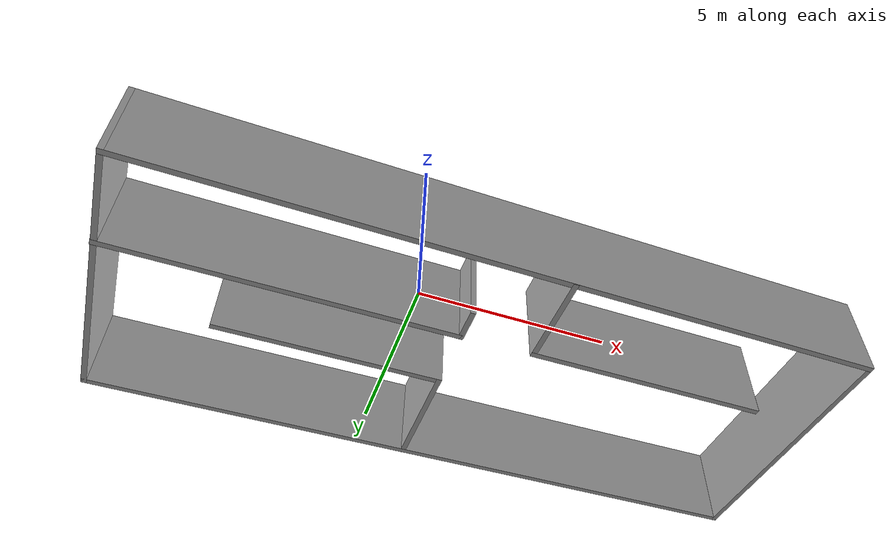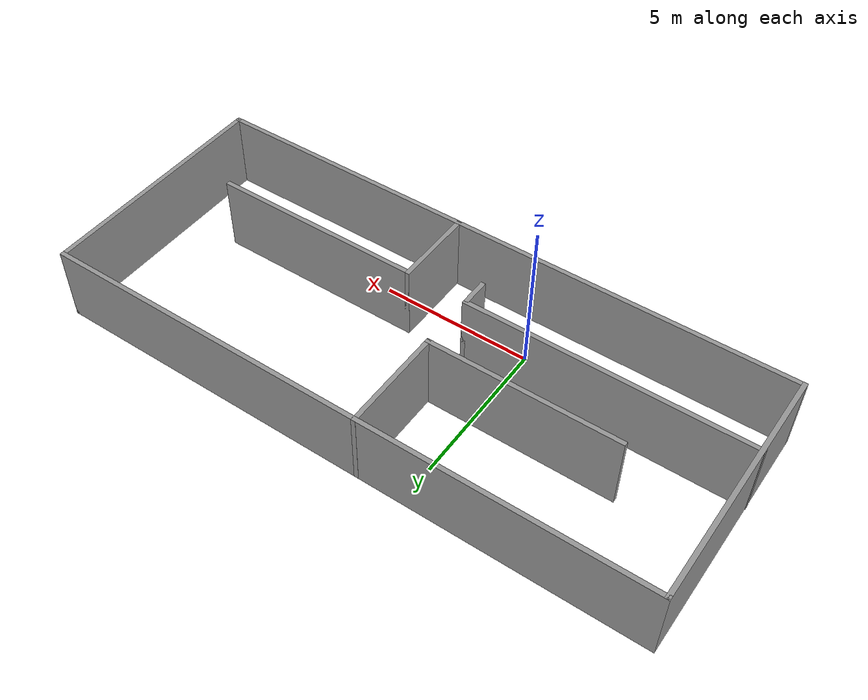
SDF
<?xml version='1.0'?>
<sdf version='1.7'>
  <model name='bigger_room'>
    <pose>2.32757 2.36595 0 0 -0 0</pose>
    <link name='Wall_0'>
      <collision name='Wall_0_Collision'>
        <geometry>
          <box>
            <size>8 0.15 2.5</size>
          </box>
        </geometry>
        <pose>0 0 1.25 0 -0 0</pose>
      </collision>
      <visual name='Wall_0_Visual'>
        <pose>0 0 1.25 0 -0 0</pose>
        <geometry>
          <box>
            <size>8 0.15 2.5</size>
          </box>
        </geometry>
        <material>
          <script>
            <uri>file://media/materials/scripts/gazebo.material</uri>
            <name>Gazebo/Grey</name>
          </script>
          <ambient>1 1 1 1</ambient>
        </material>
        <meta>
          <layer>0</layer>
        </meta>
      </visual>
      <pose>-9.91757 -0.000951 0 0 -0 1.5708</pose>
    </link>
    <link name='Wall_1'>
      <collision name='Wall_1_Collision'>
        <geometry>
          <box>
            <size>20 0.15 2.5</size>
          </box>
        </geometry>
        <pose>0 0 1.25 0 -0 0</pose>
      </collision>
      <visual name='Wall_1_Visual'>
        <pose>0 0 1.25 0 -0 0</pose>
        <geometry>
          <box>
            <size>20 0.15 2.5</size>
          </box>
        </geometry>
        <material>
          <script>
            <uri>file://media/materials/scripts/gazebo.material</uri>
            <name>Gazebo/Grey</name>
          </script>
          <ambient>1 1 1 1</ambient>
        </material>
        <meta>
          <layer>0</layer>
        </meta>
      </visual>
      <pose>0.007425 3.92405 0 0 -0 0</pose>
    </link>
    <link name='Wall_11'>
      <collision name='Wall_11_Collision'>
        <geometry>
          <box>
            <size>2.75 0.15 2.5</size>
          </box>
        </geometry>
        <pose>0 0 1.25 0 -0 0</pose>
      </collision>
      <visual name='Wall_11_Visual'>
        <pose>0 0 1.25 0 -0 0</pose>
        <geometry>
          <box>
            <size>2.75 0.15 2.5</size>
          </box>
        </geometry>
        <material>
          <script>
            <uri>file://media/materials/scripts/gazebo.material</uri>
            <name>Gazebo/Grey</name>
          </script>
          <ambient>1 1 1 1</ambient>
        </material>
        <meta>
          <layer>0</layer>
        </meta>
      </visual>
      <pose>1.19125 -2.6096 0 0 -0 1.5708</pose>
    </link>
    <link name='Wall_12'>
      <collision name='Wall_12_Collision'>
        <geometry>
          <box>
            <size>7 0.15 2.5</size>
          </box>
        </geometry>
        <pose>0 0 1.25 0 -0 0</pose>
      </collision>
      <visual name='Wall_12_Visual'>
        <pose>0 0 1.25 0 -0 0</pose>
        <geometry>
          <box>
            <size>7 0.15 2.5</size>
          </box>
        </geometry>
        <material>
          <script>
            <uri>file://media/materials/scripts/gazebo.material</uri>
            <name>Gazebo/Grey</name>
          </script>
          <ambient>1 1 1 1</ambient>
        </material>
        <meta>
          <layer>0</layer>
        </meta>
      </visual>
      <pose>4.61625 -1.3096 0 0 -0 0</pose>
    </link>
    <link name='Wall_2'>
      <collision name='Wall_2_Collision'>
        <geometry>
          <box>
            <size>8 0.15 2.5</size>
          </box>
        </geometry>
        <pose>0 0 1.25 0 -0 0</pose>
      </collision>
      <visual name='Wall_2_Visual'>
        <pose>0 0 1.25 0 -0 0</pose>
        <geometry>
          <box>
            <size>8 0.15 2.5</size>
          </box>
        </geometry>
        <material>
          <script>
            <uri>file://media/materials/scripts/gazebo.material</uri>
            <name>Gazebo/Grey</name>
          </script>
          <ambient>1 1 1 1</ambient>
        </material>
        <meta>
          <layer>0</layer>
        </meta>
      </visual>
      <pose>9.93243 -0.000951 0 0 -0 -1.5708</pose>
    </link>
    <link name='Wall_3'>
      <collision name='Wall_3_Collision'>
        <geometry>
          <box>
            <size>20 0.15 2.5</size>
          </box>
        </geometry>
        <pose>0 0 1.25 0 -0 0</pose>
      </collision>
      <visual name='Wall_3_Visual'>
        <pose>0 0 1.25 0 -0 0</pose>
        <geometry>
          <box>
            <size>20 0.15 2.5</size>
          </box>
        </geometry>
        <material>
          <script>
            <uri>file://media/materials/scripts/gazebo.material</uri>
            <name>Gazebo/Grey</name>
          </script>
          <ambient>1 1 1 1</ambient>
        </material>
        <meta>
          <layer>0</layer>
        </meta>
      </visual>
      <pose>0.007425 -3.92595 0 0 -0 3.14159</pose>
    </link>
    <link name='Wall_5'>
      <collision name='Wall_5_Collision'>
        <geometry>
          <box>
            <size>3.5 0.15 2.5</size>
          </box>
        </geometry>
        <pose>0 0 1.25 0 -0 0</pose>
      </collision>
      <visual name='Wall_5_Visual'>
        <pose>0 0 1.25 0 -0 0</pose>
        <geometry>
          <box>
            <size>3.5 0.15 2.5</size>
          </box>
        </geometry>
        <material>
          <script>
            <uri>file://media/materials/scripts/gazebo.material</uri>
            <name>Gazebo/Grey</name>
          </script>
          <ambient>1 1 1 1</ambient>
        </material>
        <meta>
          <layer>0</layer>
        </meta>
      </visual>
      <pose>-0.820103 2.25095 0 0 -0 -1.5708</pose>
    </link>
    <link name='Wall_6'>
      <collision name='Wall_6_Collision'>
        <geometry>
          <box>
            <size>6.25 0.15 2.5</size>
          </box>
        </geometry>
        <pose>0 0 1.25 0 -0 0</pose>
      </collision>
      <visual name='Wall_6_Visual'>
        <pose>0 0 1.25 0 -0 0</pose>
        <geometry>
          <box>
            <size>6.25 0.15 2.5</size>
          </box>
        </geometry>
        <material>
          <script>
            <uri>file://media/materials/scripts/gazebo.material</uri>
            <name>Gazebo/Grey</name>
          </script>
          <ambient>1 1 1 1</ambient>
        </material>
        <meta>
          <layer>0</layer>
        </meta>
      </visual>
      <pose>-3.8701 0.575952 0 0 -0 3.14159</pose>
    </link>
    <link name='Wall_8'>
      <collision name='Wall_8_Collision'>
        <geometry>
          <box>
            <size>9.25 0.15 2.5</size>
          </box>
        </geometry>
        <pose>0 0 1.25 0 -0 0</pose>
      </collision>
      <visual name='Wall_8_Visual'>
        <pose>0 0 1.25 0 -0 0</pose>
        <geometry>
          <box>
            <size>9.25 0.15 2.5</size>
          </box>
        </geometry>
        <material>
          <script>
            <uri>file://media/materials/scripts/gazebo.material</uri>
            <name>Gazebo/Grey</name>
          </script>
          <ambient>1 1 1 1</ambient>
        </material>
        <meta>
          <layer>0</layer>
        </meta>
      </visual>
      <pose>-5.38243 -1.2686 0 0 -0 0</pose>
    </link>
    <link name='Wall_9'>
      <collision name='Wall_9_Collision'>
        <geometry>
          <box>
            <size>1 0.15 2.5</size>
          </box>
        </geometry>
        <pose>0 0 1.25 0 -0 0</pose>
      </collision>
      <visual name='Wall_9_Visual'>
        <pose>0 0 1.25 0 -0 0</pose>
        <geometry>
          <box>
            <size>1 0.15 2.5</size>
          </box>
        </geometry>
        <material>
          <script>
            <uri>file://media/materials/scripts/gazebo.material</uri>
            <name>Gazebo/Grey</name>
          </script>
          <ambient>1 1 1 1</ambient>
        </material>
        <meta>
          <layer>0</layer>
        </meta>
      </visual>
      <pose>-0.832426 -1.6936 0 0 -0 -1.5708</pose>
    </link>
    <static>1</static>
  </model>
</sdf>
